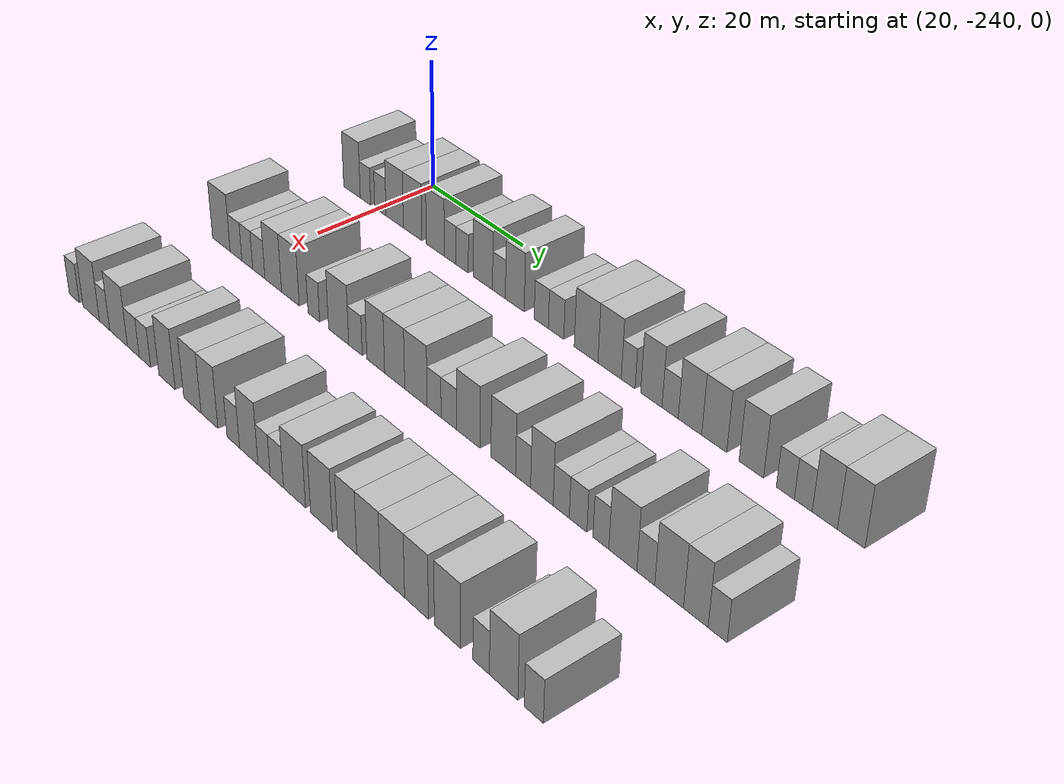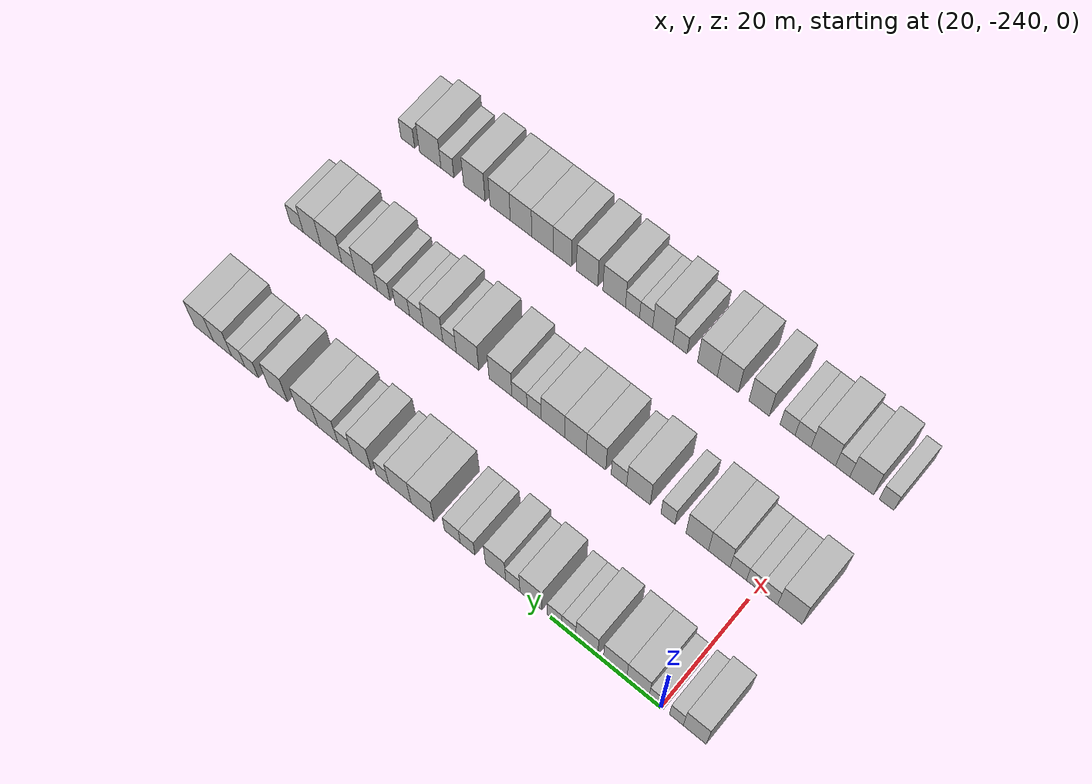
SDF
<sdf version="1.6">
 <world name="default">
  <model name="building_1">
   <static>1</static>
   <pose>25.0000 -245.9847 0 0.000000 0.000000 0.000000</pose>
   <link name="link">
    <pose>0 0 4.50 0 0 0</pose>
    <collision name="collision"><geometry><box><size>10.0000 4.0305 9.0000</size></box></geometry></collision>
    <visual name="visual">
     <cast_shadows>0</cast_shadows>
     <geometry><box><size>10.0000 4.0305 9.0000</size></box></geometry>
     <material>
      <script>
       <uri>model://HANNAS_wall/materials/scripts</uri>
       <uri>model://HANNAS_wall/materials/textures</uri>
       <name>vrc/HANNAS_wall</name>
      </script>
     </material>
    </visual>
   </link>
  </model>
  <model name="building_2">
   <static>1</static>
   <pose>25.0000 -242.7346 0 0.000000 0.000000 0.000000</pose>
   <link name="link">
    <pose>0 0 3.00 0 0 0</pose>
    <collision name="collision"><geometry><box><size>10.0000 2.4697 6.0000</size></box></geometry></collision>
    <visual name="visual">
     <cast_shadows>0</cast_shadows>
     <geometry><box><size>10.0000 2.4697 6.0000</size></box></geometry>
     <material>
      <script>
       <uri>model://HANNAS_wall/materials/scripts</uri>
       <uri>model://HANNAS_wall/materials/textures</uri>
       <name>vrc/HANNAS_wall</name>
      </script>
     </material>
    </visual>
   </link>
  </model>
  <model name="building_3">
   <static>1</static>
   <pose>25.0000 -239.1668 0 0.000000 0.000000 0.000000</pose>
   <link name="link">
    <pose>0 0 3.00 0 0 0</pose>
    <collision name="collision"><geometry><box><size>10.0000 2.6659 6.0000</size></box></geometry></collision>
    <visual name="visual">
     <cast_shadows>0</cast_shadows>
     <geometry><box><size>10.0000 2.6659 6.0000</size></box></geometry>
     <material>
      <script>
       <uri>model://HANNAS_wall/materials/scripts</uri>
       <uri>model://HANNAS_wall/materials/textures</uri>
       <name>vrc/HANNAS_wall</name>
      </script>
     </material>
    </visual>
   </link>
  </model>
  <model name="building_4">
   <static>1</static>
   <pose>25.0000 -235.8251 0 0.000000 0.000000 0.000000</pose>
   <link name="link">
    <pose>0 0 4.50 0 0 0</pose>
    <collision name="collision"><geometry><box><size>10.0000 4.0175 9.0000</size></box></geometry></collision>
    <visual name="visual">
     <cast_shadows>0</cast_shadows>
     <geometry><box><size>10.0000 4.0175 9.0000</size></box></geometry>
     <material>
      <script>
       <uri>model://HANNAS_wall/materials/scripts</uri>
       <uri>model://HANNAS_wall/materials/textures</uri>
       <name>vrc/HANNAS_wall</name>
      </script>
     </material>
    </visual>
   </link>
  </model>
  <model name="building_5">
   <static>1</static>
   <pose>25.0000 -231.7156 0 0.000000 0.000000 0.000000</pose>
   <link name="link">
    <pose>0 0 4.50 0 0 0</pose>
    <collision name="collision"><geometry><box><size>10.0000 4.2014 9.0000</size></box></geometry></collision>
    <visual name="visual">
     <cast_shadows>0</cast_shadows>
     <geometry><box><size>10.0000 4.2014 9.0000</size></box></geometry>
     <material>
      <script>
       <uri>model://HANNAS_wall/materials/scripts</uri>
       <uri>model://HANNAS_wall/materials/textures</uri>
       <name>vrc/HANNAS_wall</name>
      </script>
     </material>
    </visual>
   </link>
  </model>
  <model name="building_6">
   <static>1</static>
   <pose>25.0000 -226.6154 0 0.000000 0.000000 0.000000</pose>
   <link name="link">
    <pose>0 0 4.50 0 0 0</pose>
    <collision name="collision"><geometry><box><size>10.0000 3.9990 9.0000</size></box></geometry></collision>
    <visual name="visual">
     <cast_shadows>0</cast_shadows>
     <geometry><box><size>10.0000 3.9990 9.0000</size></box></geometry>
     <material>
      <script>
       <uri>model://HANNAS_wall/materials/scripts</uri>
       <uri>model://HANNAS_wall/materials/textures</uri>
       <name>vrc/HANNAS_wall</name>
      </script>
     </material>
    </visual>
   </link>
  </model>
  <model name="building_7">
   <static>1</static>
   <pose>25.0000 -223.3513 0 0.000000 0.000000 0.000000</pose>
   <link name="link">
    <pose>0 0 3.00 0 0 0</pose>
    <collision name="collision"><geometry><box><size>10.0000 2.5292 6.0000</size></box></geometry></collision>
    <visual name="visual">
     <cast_shadows>0</cast_shadows>
     <geometry><box><size>10.0000 2.5292 6.0000</size></box></geometry>
     <material>
      <script>
       <uri>model://HANNAS_wall/materials/scripts</uri>
       <uri>model://HANNAS_wall/materials/textures</uri>
       <name>vrc/HANNAS_wall</name>
      </script>
     </material>
    </visual>
   </link>
  </model>
  <model name="building_8">
   <static>1</static>
   <pose>25.0000 -220.7528 0 0.000000 0.000000 0.000000</pose>
   <link name="link">
    <pose>0 0 3.00 0 0 0</pose>
    <collision name="collision"><geometry><box><size>10.0000 2.6679 6.0000</size></box></geometry></collision>
    <visual name="visual">
     <cast_shadows>0</cast_shadows>
     <geometry><box><size>10.0000 2.6679 6.0000</size></box></geometry>
     <material>
      <script>
       <uri>model://HANNAS_wall/materials/scripts</uri>
       <uri>model://HANNAS_wall/materials/textures</uri>
       <name>vrc/HANNAS_wall</name>
      </script>
     </material>
    </visual>
   </link>
  </model>
  <model name="building_9">
   <static>1</static>
   <pose>25.0000 -216.3720 0 0.000000 0.000000 0.000000</pose>
   <link name="link">
    <pose>0 0 4.50 0 0 0</pose>
    <collision name="collision"><geometry><box><size>10.0000 4.0935 9.0000</size></box></geometry></collision>
    <visual name="visual">
     <cast_shadows>0</cast_shadows>
     <geometry><box><size>10.0000 4.0935 9.0000</size></box></geometry>
     <material>
      <script>
       <uri>model://HANNAS_wall/materials/scripts</uri>
       <uri>model://HANNAS_wall/materials/textures</uri>
       <name>vrc/HANNAS_wall</name>
      </script>
     </material>
    </visual>
   </link>
  </model>
  <model name="building_10">
   <static>1</static>
   <pose>25.0000 -212.9944 0 0.000000 0.000000 0.000000</pose>
   <link name="link">
    <pose>0 0 3.00 0 0 0</pose>
    <collision name="collision"><geometry><box><size>10.0000 2.6618 6.0000</size></box></geometry></collision>
    <visual name="visual">
     <cast_shadows>0</cast_shadows>
     <geometry><box><size>10.0000 2.6618 6.0000</size></box></geometry>
     <material>
      <script>
       <uri>model://HANNAS_wall/materials/scripts</uri>
       <uri>model://HANNAS_wall/materials/textures</uri>
       <name>vrc/HANNAS_wall</name>
      </script>
     </material>
    </visual>
   </link>
  </model>
  <model name="building_11">
   <static>1</static>
   <pose>25.0000 -209.7556 0 0.000000 0.000000 0.000000</pose>
   <link name="link">
    <pose>0 0 4.50 0 0 0</pose>
    <collision name="collision"><geometry><box><size>10.0000 3.8159 9.0000</size></box></geometry></collision>
    <visual name="visual">
     <cast_shadows>0</cast_shadows>
     <geometry><box><size>10.0000 3.8159 9.0000</size></box></geometry>
     <material>
      <script>
       <uri>model://HANNAS_wall/materials/scripts</uri>
       <uri>model://HANNAS_wall/materials/textures</uri>
       <name>vrc/HANNAS_wall</name>
      </script>
     </material>
    </visual>
   </link>
  </model>
  <model name="building_12">
   <static>1</static>
   <pose>25.0000 -204.4514 0 0.000000 0.000000 0.000000</pose>
   <link name="link">
    <pose>0 0 3.00 0 0 0</pose>
    <collision name="collision"><geometry><box><size>10.0000 2.7926 6.0000</size></box></geometry></collision>
    <visual name="visual">
     <cast_shadows>0</cast_shadows>
     <geometry><box><size>10.0000 2.7926 6.0000</size></box></geometry>
     <material>
      <script>
       <uri>model://HANNAS_wall/materials/scripts</uri>
       <uri>model://HANNAS_wall/materials/textures</uri>
       <name>vrc/HANNAS_wall</name>
      </script>
     </material>
    </visual>
   </link>
  </model>
  <model name="building_13">
   <static>1</static>
   <pose>25.0000 -201.5556 0 0.000000 0.000000 0.000000</pose>
   <link name="link">
    <pose>0 0 3.00 0 0 0</pose>
    <collision name="collision"><geometry><box><size>10.0000 2.9989 6.0000</size></box></geometry></collision>
    <visual name="visual">
     <cast_shadows>0</cast_shadows>
     <geometry><box><size>10.0000 2.9989 6.0000</size></box></geometry>
     <material>
      <script>
       <uri>model://HANNAS_wall/materials/scripts</uri>
       <uri>model://HANNAS_wall/materials/textures</uri>
       <name>vrc/HANNAS_wall</name>
      </script>
     </material>
    </visual>
   </link>
  </model>
  <model name="building_14">
   <static>1</static>
   <pose>25.0000 -195.8231 0 0.000000 0.000000 0.000000</pose>
   <link name="link">
    <pose>0 0 4.50 0 0 0</pose>
    <collision name="collision"><geometry><box><size>10.0000 4.4661 9.0000</size></box></geometry></collision>
    <visual name="visual">
     <cast_shadows>0</cast_shadows>
     <geometry><box><size>10.0000 4.4661 9.0000</size></box></geometry>
     <material>
      <script>
       <uri>model://HANNAS_wall/materials/scripts</uri>
       <uri>model://HANNAS_wall/materials/textures</uri>
       <name>vrc/HANNAS_wall</name>
      </script>
     </material>
    </visual>
   </link>
  </model>
  <model name="building_15">
   <static>1</static>
   <pose>25.0000 -191.4522 0 0.000000 0.000000 0.000000</pose>
   <link name="link">
    <pose>0 0 4.50 0 0 0</pose>
    <collision name="collision"><geometry><box><size>10.0000 4.2756 9.0000</size></box></geometry></collision>
    <visual name="visual">
     <cast_shadows>0</cast_shadows>
     <geometry><box><size>10.0000 4.2756 9.0000</size></box></geometry>
     <material>
      <script>
       <uri>model://HANNAS_wall/materials/scripts</uri>
       <uri>model://HANNAS_wall/materials/textures</uri>
       <name>vrc/HANNAS_wall</name>
      </script>
     </material>
    </visual>
   </link>
  </model>
  <model name="building_16">
   <static>1</static>
   <pose>25.0000 -188.0689 0 0.000000 0.000000 0.000000</pose>
   <link name="link">
    <pose>0 0 3.00 0 0 0</pose>
    <collision name="collision"><geometry><box><size>10.0000 2.4910 6.0000</size></box></geometry></collision>
    <visual name="visual">
     <cast_shadows>0</cast_shadows>
     <geometry><box><size>10.0000 2.4910 6.0000</size></box></geometry>
     <material>
      <script>
       <uri>model://HANNAS_wall/materials/scripts</uri>
       <uri>model://HANNAS_wall/materials/textures</uri>
       <name>vrc/HANNAS_wall</name>
      </script>
     </material>
    </visual>
   </link>
  </model>
  <model name="building_17">
   <static>1</static>
   <pose>25.0000 -183.9358 0 0.000000 0.000000 0.000000</pose>
   <link name="link">
    <pose>0 0 4.50 0 0 0</pose>
    <collision name="collision"><geometry><box><size>10.0000 3.7752 9.0000</size></box></geometry></collision>
    <visual name="visual">
     <cast_shadows>0</cast_shadows>
     <geometry><box><size>10.0000 3.7752 9.0000</size></box></geometry>
     <material>
      <script>
       <uri>model://HANNAS_wall/materials/scripts</uri>
       <uri>model://HANNAS_wall/materials/textures</uri>
       <name>vrc/HANNAS_wall</name>
      </script>
     </material>
    </visual>
   </link>
  </model>
  <model name="building_18">
   <static>1</static>
   <pose>25.0000 -180.6475 0 0.000000 0.000000 0.000000</pose>
   <link name="link">
    <pose>0 0 3.00 0 0 0</pose>
    <collision name="collision"><geometry><box><size>10.0000 2.8013 6.0000</size></box></geometry></collision>
    <visual name="visual">
     <cast_shadows>0</cast_shadows>
     <geometry><box><size>10.0000 2.8013 6.0000</size></box></geometry>
     <material>
      <script>
       <uri>model://HANNAS_wall/materials/scripts</uri>
       <uri>model://HANNAS_wall/materials/textures</uri>
       <name>vrc/HANNAS_wall</name>
      </script>
     </material>
    </visual>
   </link>
  </model>
  <model name="building_19">
   <static>1</static>
   <pose>25.0000 -177.2562 0 0.000000 0.000000 0.000000</pose>
   <link name="link">
    <pose>0 0 4.50 0 0 0</pose>
    <collision name="collision"><geometry><box><size>10.0000 3.9814 9.0000</size></box></geometry></collision>
    <visual name="visual">
     <cast_shadows>0</cast_shadows>
     <geometry><box><size>10.0000 3.9814 9.0000</size></box></geometry>
     <material>
      <script>
       <uri>model://HANNAS_wall/materials/scripts</uri>
       <uri>model://HANNAS_wall/materials/textures</uri>
       <name>vrc/HANNAS_wall</name>
      </script>
     </material>
    </visual>
   </link>
  </model>
  <model name="building_20">
   <static>1</static>
   <pose>25.0000 -173.1930 0 0.000000 0.000000 0.000000</pose>
   <link name="link">
    <pose>0 0 4.50 0 0 0</pose>
    <collision name="collision"><geometry><box><size>10.0000 4.1450 9.0000</size></box></geometry></collision>
    <visual name="visual">
     <cast_shadows>0</cast_shadows>
     <geometry><box><size>10.0000 4.1450 9.0000</size></box></geometry>
     <material>
      <script>
       <uri>model://HANNAS_wall/materials/scripts</uri>
       <uri>model://HANNAS_wall/materials/textures</uri>
       <name>vrc/HANNAS_wall</name>
      </script>
     </material>
    </visual>
   </link>
  </model>
  <model name="building_21">
   <static>1</static>
   <pose>25.0000 -167.1621 0 0.000000 0.000000 0.000000</pose>
   <link name="link">
    <pose>0 0 4.50 0 0 0</pose>
    <collision name="collision"><geometry><box><size>10.0000 3.9168 9.0000</size></box></geometry></collision>
    <visual name="visual">
     <cast_shadows>0</cast_shadows>
     <geometry><box><size>10.0000 3.9168 9.0000</size></box></geometry>
     <material>
      <script>
       <uri>model://HANNAS_wall/materials/scripts</uri>
       <uri>model://HANNAS_wall/materials/textures</uri>
       <name>vrc/HANNAS_wall</name>
      </script>
     </material>
    </visual>
   </link>
  </model>
  <model name="building_22">
   <static>1</static>
   <pose>25.0000 -161.8120 0 0.000000 0.000000 0.000000</pose>
   <link name="link">
    <pose>0 0 3.00 0 0 0</pose>
    <collision name="collision"><geometry><box><size>10.0000 2.7835 6.0000</size></box></geometry></collision>
    <visual name="visual">
     <cast_shadows>0</cast_shadows>
     <geometry><box><size>10.0000 2.7835 6.0000</size></box></geometry>
     <material>
      <script>
       <uri>model://HANNAS_wall/materials/scripts</uri>
       <uri>model://HANNAS_wall/materials/textures</uri>
       <name>vrc/HANNAS_wall</name>
      </script>
     </material>
    </visual>
   </link>
  </model>
  <model name="building_23">
   <static>1</static>
   <pose>25.0000 -159.0636 0 0.000000 0.000000 0.000000</pose>
   <link name="link">
    <pose>0 0 3.00 0 0 0</pose>
    <collision name="collision"><geometry><box><size>10.0000 2.7134 6.0000</size></box></geometry></collision>
    <visual name="visual">
     <cast_shadows>0</cast_shadows>
     <geometry><box><size>10.0000 2.7134 6.0000</size></box></geometry>
     <material>
      <script>
       <uri>model://HANNAS_wall/materials/scripts</uri>
       <uri>model://HANNAS_wall/materials/textures</uri>
       <name>vrc/HANNAS_wall</name>
      </script>
     </material>
    </visual>
   </link>
  </model>
  <model name="building_24">
   <static>1</static>
   <pose>25.0000 -155.8258 0 0.000000 0.000000 0.000000</pose>
   <link name="link">
    <pose>0 0 4.50 0 0 0</pose>
    <collision name="collision"><geometry><box><size>10.0000 3.7621 9.0000</size></box></geometry></collision>
    <visual name="visual">
     <cast_shadows>0</cast_shadows>
     <geometry><box><size>10.0000 3.7621 9.0000</size></box></geometry>
     <material>
      <script>
       <uri>model://HANNAS_wall/materials/scripts</uri>
       <uri>model://HANNAS_wall/materials/textures</uri>
       <name>vrc/HANNAS_wall</name>
      </script>
     </material>
    </visual>
   </link>
  </model>
  <model name="building_25">
   <static>1</static>
   <pose>25.0000 -151.9421 0 0.000000 0.000000 0.000000</pose>
   <link name="link">
    <pose>0 0 4.50 0 0 0</pose>
    <collision name="collision"><geometry><box><size>10.0000 4.0052 9.0000</size></box></geometry></collision>
    <visual name="visual">
     <cast_shadows>0</cast_shadows>
     <geometry><box><size>10.0000 4.0052 9.0000</size></box></geometry>
     <material>
      <script>
       <uri>model://HANNAS_wall/materials/scripts</uri>
       <uri>model://HANNAS_wall/materials/textures</uri>
       <name>vrc/HANNAS_wall</name>
      </script>
     </material>
    </visual>
   </link>
  </model>
  <model name="building_131">
   <static>1</static>
   <pose>47.0000 -245.7831 0 0.000000 0.000000 0.000000</pose>
   <link name="link">
    <pose>0 0 4.50 0 0 0</pose>
    <collision name="collision"><geometry><box><size>10.0000 4.4338 9.0000</size></box></geometry></collision>
    <visual name="visual">
     <cast_shadows>0</cast_shadows>
     <geometry><box><size>10.0000 4.4338 9.0000</size></box></geometry>
     <material>
      <script>
       <uri>model://HANNAS_wall/materials/scripts</uri>
       <uri>model://HANNAS_wall/materials/textures</uri>
       <name>vrc/HANNAS_wall</name>
      </script>
     </material>
    </visual>
   </link>
  </model>
  <model name="building_132">
   <static>1</static>
   <pose>47.0000 -242.1000 0 0.000000 0.000000 0.000000</pose>
   <link name="link">
    <pose>0 0 3.00 0 0 0</pose>
    <collision name="collision"><geometry><box><size>10.0000 2.9326 6.0000</size></box></geometry></collision>
    <visual name="visual">
     <cast_shadows>0</cast_shadows>
     <geometry><box><size>10.0000 2.9326 6.0000</size></box></geometry>
     <material>
      <script>
       <uri>model://HANNAS_wall/materials/scripts</uri>
       <uri>model://HANNAS_wall/materials/textures</uri>
       <name>vrc/HANNAS_wall</name>
      </script>
     </material>
    </visual>
   </link>
  </model>
  <model name="building_133">
   <static>1</static>
   <pose>47.0000 -239.3167 0 0.000000 0.000000 0.000000</pose>
   <link name="link">
    <pose>0 0 3.00 0 0 0</pose>
    <collision name="collision"><geometry><box><size>10.0000 2.6340 6.0000</size></box></geometry></collision>
    <visual name="visual">
     <cast_shadows>0</cast_shadows>
     <geometry><box><size>10.0000 2.6340 6.0000</size></box></geometry>
     <material>
      <script>
       <uri>model://HANNAS_wall/materials/scripts</uri>
       <uri>model://HANNAS_wall/materials/textures</uri>
       <name>vrc/HANNAS_wall</name>
      </script>
     </material>
    </visual>
   </link>
  </model>
  <model name="building_134">
   <static>1</static>
   <pose>47.0000 -236.5201 0 0.000000 0.000000 0.000000</pose>
   <link name="link">
    <pose>0 0 3.00 0 0 0</pose>
    <collision name="collision"><geometry><box><size>10.0000 2.9591 6.0000</size></box></geometry></collision>
    <visual name="visual">
     <cast_shadows>0</cast_shadows>
     <geometry><box><size>10.0000 2.9591 6.0000</size></box></geometry>
     <material>
      <script>
       <uri>model://HANNAS_wall/materials/scripts</uri>
       <uri>model://HANNAS_wall/materials/textures</uri>
       <name>vrc/HANNAS_wall</name>
      </script>
     </material>
    </visual>
   </link>
  </model>
  <model name="building_135">
   <static>1</static>
   <pose>47.0000 -233.0750 0 0.000000 0.000000 0.000000</pose>
   <link name="link">
    <pose>0 0 4.50 0 0 0</pose>
    <collision name="collision"><geometry><box><size>10.0000 3.9310 9.0000</size></box></geometry></collision>
    <visual name="visual">
     <cast_shadows>0</cast_shadows>
     <geometry><box><size>10.0000 3.9310 9.0000</size></box></geometry>
     <material>
      <script>
       <uri>model://HANNAS_wall/materials/scripts</uri>
       <uri>model://HANNAS_wall/materials/textures</uri>
       <name>vrc/HANNAS_wall</name>
      </script>
     </material>
    </visual>
   </link>
  </model>
  <model name="building_136">
   <static>1</static>
   <pose>47.0000 -229.0514 0 0.000000 0.000000 0.000000</pose>
   <link name="link">
    <pose>0 0 4.50 0 0 0</pose>
    <collision name="collision"><geometry><box><size>10.0000 4.1163 9.0000</size></box></geometry></collision>
    <visual name="visual">
     <cast_shadows>0</cast_shadows>
     <geometry><box><size>10.0000 4.1163 9.0000</size></box></geometry>
     <material>
      <script>
       <uri>model://HANNAS_wall/materials/scripts</uri>
       <uri>model://HANNAS_wall/materials/textures</uri>
       <name>vrc/HANNAS_wall</name>
      </script>
     </material>
    </visual>
   </link>
  </model>
  <model name="building_137">
   <static>1</static>
   <pose>47.0000 -223.6809 0 0.000000 0.000000 0.000000</pose>
   <link name="link">
    <pose>0 0 3.00 0 0 0</pose>
    <collision name="collision"><geometry><box><size>10.0000 2.6247 6.0000</size></box></geometry></collision>
    <visual name="visual">
     <cast_shadows>0</cast_shadows>
     <geometry><box><size>10.0000 2.6247 6.0000</size></box></geometry>
     <material>
      <script>
       <uri>model://HANNAS_wall/materials/scripts</uri>
       <uri>model://HANNAS_wall/materials/textures</uri>
       <name>vrc/HANNAS_wall</name>
      </script>
     </material>
    </visual>
   </link>
  </model>
  <model name="building_138">
   <static>1</static>
   <pose>47.0000 -218.1672 0 0.000000 0.000000 0.000000</pose>
   <link name="link">
    <pose>0 0 4.50 0 0 0</pose>
    <collision name="collision"><geometry><box><size>10.0000 4.4027 9.0000</size></box></geometry></collision>
    <visual name="visual">
     <cast_shadows>0</cast_shadows>
     <geometry><box><size>10.0000 4.4027 9.0000</size></box></geometry>
     <material>
      <script>
       <uri>model://HANNAS_wall/materials/scripts</uri>
       <uri>model://HANNAS_wall/materials/textures</uri>
       <name>vrc/HANNAS_wall</name>
      </script>
     </material>
    </visual>
   </link>
  </model>
  <model name="building_139">
   <static>1</static>
   <pose>47.0000 -214.5176 0 0.000000 0.000000 0.000000</pose>
   <link name="link">
    <pose>0 0 3.00 0 0 0</pose>
    <collision name="collision"><geometry><box><size>10.0000 2.8966 6.0000</size></box></geometry></collision>
    <visual name="visual">
     <cast_shadows>0</cast_shadows>
     <geometry><box><size>10.0000 2.8966 6.0000</size></box></geometry>
     <material>
      <script>
       <uri>model://HANNAS_wall/materials/scripts</uri>
       <uri>model://HANNAS_wall/materials/textures</uri>
       <name>vrc/HANNAS_wall</name>
      </script>
     </material>
    </visual>
   </link>
  </model>
  <model name="building_140">
   <static>1</static>
   <pose>47.0000 -210.2104 0 0.000000 0.000000 0.000000</pose>
   <link name="link">
    <pose>0 0 4.50 0 0 0</pose>
    <collision name="collision"><geometry><box><size>10.0000 3.7176 9.0000</size></box></geometry></collision>
    <visual name="visual">
     <cast_shadows>0</cast_shadows>
     <geometry><box><size>10.0000 3.7176 9.0000</size></box></geometry>
     <material>
      <script>
       <uri>model://HANNAS_wall/materials/scripts</uri>
       <uri>model://HANNAS_wall/materials/textures</uri>
       <name>vrc/HANNAS_wall</name>
      </script>
     </material>
    </visual>
   </link>
  </model>
  <model name="building_141">
   <static>1</static>
   <pose>47.0000 -206.2868 0 0.000000 0.000000 0.000000</pose>
   <link name="link">
    <pose>0 0 4.50 0 0 0</pose>
    <collision name="collision"><geometry><box><size>10.0000 4.1298 9.0000</size></box></geometry></collision>
    <visual name="visual">
     <cast_shadows>0</cast_shadows>
     <geometry><box><size>10.0000 4.1298 9.0000</size></box></geometry>
     <material>
      <script>
       <uri>model://HANNAS_wall/materials/scripts</uri>
       <uri>model://HANNAS_wall/materials/textures</uri>
       <name>vrc/HANNAS_wall</name>
      </script>
     </material>
    </visual>
   </link>
  </model>
  <model name="building_142">
   <static>1</static>
   <pose>47.0000 -201.9830 0 0.000000 0.000000 0.000000</pose>
   <link name="link">
    <pose>0 0 4.50 0 0 0</pose>
    <collision name="collision"><geometry><box><size>10.0000 4.4778 9.0000</size></box></geometry></collision>
    <visual name="visual">
     <cast_shadows>0</cast_shadows>
     <geometry><box><size>10.0000 4.4778 9.0000</size></box></geometry>
     <material>
      <script>
       <uri>model://HANNAS_wall/materials/scripts</uri>
       <uri>model://HANNAS_wall/materials/textures</uri>
       <name>vrc/HANNAS_wall</name>
      </script>
     </material>
    </visual>
   </link>
  </model>
  <model name="building_143">
   <static>1</static>
   <pose>47.0000 -198.3755 0 0.000000 0.000000 0.000000</pose>
   <link name="link">
    <pose>0 0 3.00 0 0 0</pose>
    <collision name="collision"><geometry><box><size>10.0000 2.7372 6.0000</size></box></geometry></collision>
    <visual name="visual">
     <cast_shadows>0</cast_shadows>
     <geometry><box><size>10.0000 2.7372 6.0000</size></box></geometry>
     <material>
      <script>
       <uri>model://HANNAS_wall/materials/scripts</uri>
       <uri>model://HANNAS_wall/materials/textures</uri>
       <name>vrc/HANNAS_wall</name>
      </script>
     </material>
    </visual>
   </link>
  </model>
  <model name="building_144">
   <static>1</static>
   <pose>47.0000 -195.5358 0 0.000000 0.000000 0.000000</pose>
   <link name="link">
    <pose>0 0 3.00 0 0 0</pose>
    <collision name="collision"><geometry><box><size>10.0000 2.9421 6.0000</size></box></geometry></collision>
    <visual name="visual">
     <cast_shadows>0</cast_shadows>
     <geometry><box><size>10.0000 2.9421 6.0000</size></box></geometry>
     <material>
      <script>
       <uri>model://HANNAS_wall/materials/scripts</uri>
       <uri>model://HANNAS_wall/materials/textures</uri>
       <name>vrc/HANNAS_wall</name>
      </script>
     </material>
    </visual>
   </link>
  </model>
  <model name="building_145">
   <static>1</static>
   <pose>47.0000 -191.8267 0 0.000000 0.000000 0.000000</pose>
   <link name="link">
    <pose>0 0 4.50 0 0 0</pose>
    <collision name="collision"><geometry><box><size>10.0000 4.4762 9.0000</size></box></geometry></collision>
    <visual name="visual">
     <cast_shadows>0</cast_shadows>
     <geometry><box><size>10.0000 4.4762 9.0000</size></box></geometry>
     <material>
      <script>
       <uri>model://HANNAS_wall/materials/scripts</uri>
       <uri>model://HANNAS_wall/materials/textures</uri>
       <name>vrc/HANNAS_wall</name>
      </script>
     </material>
    </visual>
   </link>
  </model>
  <model name="building_146">
   <static>1</static>
   <pose>47.0000 -185.3511 0 0.000000 0.000000 0.000000</pose>
   <link name="link">
    <pose>0 0 4.50 0 0 0</pose>
    <collision name="collision"><geometry><box><size>10.0000 4.4749 9.0000</size></box></geometry></collision>
    <visual name="visual">
     <cast_shadows>0</cast_shadows>
     <geometry><box><size>10.0000 4.4749 9.0000</size></box></geometry>
     <material>
      <script>
       <uri>model://HANNAS_wall/materials/scripts</uri>
       <uri>model://HANNAS_wall/materials/textures</uri>
       <name>vrc/HANNAS_wall</name>
      </script>
     </material>
    </visual>
   </link>
  </model>
  <model name="building_147">
   <static>1</static>
   <pose>47.0000 -181.7834 0 0.000000 0.000000 0.000000</pose>
   <link name="link">
    <pose>0 0 3.00 0 0 0</pose>
    <collision name="collision"><geometry><box><size>10.0000 2.6606 6.0000</size></box></geometry></collision>
    <visual name="visual">
     <cast_shadows>0</cast_shadows>
     <geometry><box><size>10.0000 2.6606 6.0000</size></box></geometry>
     <material>
      <script>
       <uri>model://HANNAS_wall/materials/scripts</uri>
       <uri>model://HANNAS_wall/materials/textures</uri>
       <name>vrc/HANNAS_wall</name>
      </script>
     </material>
    </visual>
   </link>
  </model>
  <model name="building_148">
   <static>1</static>
   <pose>47.0000 -178.4844 0 0.000000 0.000000 0.000000</pose>
   <link name="link">
    <pose>0 0 4.50 0 0 0</pose>
    <collision name="collision"><geometry><box><size>10.0000 3.9373 9.0000</size></box></geometry></collision>
    <visual name="visual">
     <cast_shadows>0</cast_shadows>
     <geometry><box><size>10.0000 3.9373 9.0000</size></box></geometry>
     <material>
      <script>
       <uri>model://HANNAS_wall/materials/scripts</uri>
       <uri>model://HANNAS_wall/materials/textures</uri>
       <name>vrc/HANNAS_wall</name>
      </script>
     </material>
    </visual>
   </link>
  </model>
  <model name="building_149">
   <static>1</static>
   <pose>47.0000 -175.1415 0 0.000000 0.000000 0.000000</pose>
   <link name="link">
    <pose>0 0 3.00 0 0 0</pose>
    <collision name="collision"><geometry><box><size>10.0000 2.7487 6.0000</size></box></geometry></collision>
    <visual name="visual">
     <cast_shadows>0</cast_shadows>
     <geometry><box><size>10.0000 2.7487 6.0000</size></box></geometry>
     <material>
      <script>
       <uri>model://HANNAS_wall/materials/scripts</uri>
       <uri>model://HANNAS_wall/materials/textures</uri>
       <name>vrc/HANNAS_wall</name>
      </script>
     </material>
    </visual>
   </link>
  </model>
  <model name="building_150">
   <static>1</static>
   <pose>47.0000 -172.2871 0 0.000000 0.000000 0.000000</pose>
   <link name="link">
    <pose>0 0 3.00 0 0 0</pose>
    <collision name="collision"><geometry><box><size>10.0000 2.9601 6.0000</size></box></geometry></collision>
    <visual name="visual">
     <cast_shadows>0</cast_shadows>
     <geometry><box><size>10.0000 2.9601 6.0000</size></box></geometry>
     <material>
      <script>
       <uri>model://HANNAS_wall/materials/scripts</uri>
       <uri>model://HANNAS_wall/materials/textures</uri>
       <name>vrc/HANNAS_wall</name>
      </script>
     </material>
    </visual>
   </link>
  </model>
  <model name="building_151">
   <static>1</static>
   <pose>47.0000 -168.5086 0 0.000000 0.000000 0.000000</pose>
   <link name="link">
    <pose>0 0 3.00 0 0 0</pose>
    <collision name="collision"><geometry><box><size>10.0000 2.5968 6.0000</size></box></geometry></collision>
    <visual name="visual">
     <cast_shadows>0</cast_shadows>
     <geometry><box><size>10.0000 2.5968 6.0000</size></box></geometry>
     <material>
      <script>
       <uri>model://HANNAS_wall/materials/scripts</uri>
       <uri>model://HANNAS_wall/materials/textures</uri>
       <name>vrc/HANNAS_wall</name>
      </script>
     </material>
    </visual>
   </link>
  </model>
  <model name="building_152">
   <static>1</static>
   <pose>47.0000 -164.9627 0 0.000000 0.000000 0.000000</pose>
   <link name="link">
    <pose>0 0 4.50 0 0 0</pose>
    <collision name="collision"><geometry><box><size>10.0000 4.4950 9.0000</size></box></geometry></collision>
    <visual name="visual">
     <cast_shadows>0</cast_shadows>
     <geometry><box><size>10.0000 4.4950 9.0000</size></box></geometry>
     <material>
      <script>
       <uri>model://HANNAS_wall/materials/scripts</uri>
       <uri>model://HANNAS_wall/materials/textures</uri>
       <name>vrc/HANNAS_wall</name>
      </script>
     </material>
    </visual>
   </link>
  </model>
  <model name="building_153">
   <static>1</static>
   <pose>47.0000 -161.3163 0 0.000000 0.000000 0.000000</pose>
   <link name="link">
    <pose>0 0 3.00 0 0 0</pose>
    <collision name="collision"><geometry><box><size>10.0000 2.7978 6.0000</size></box></geometry></collision>
    <visual name="visual">
     <cast_shadows>0</cast_shadows>
     <geometry><box><size>10.0000 2.7978 6.0000</size></box></geometry>
     <material>
      <script>
       <uri>model://HANNAS_wall/materials/scripts</uri>
       <uri>model://HANNAS_wall/materials/textures</uri>
       <name>vrc/HANNAS_wall</name>
      </script>
     </material>
    </visual>
   </link>
  </model>
  <model name="building_154">
   <static>1</static>
   <pose>47.0000 -157.7211 0 0.000000 0.000000 0.000000</pose>
   <link name="link">
    <pose>0 0 4.50 0 0 0</pose>
    <collision name="collision"><geometry><box><size>10.0000 4.3926 9.0000</size></box></geometry></collision>
    <visual name="visual">
     <cast_shadows>0</cast_shadows>
     <geometry><box><size>10.0000 4.3926 9.0000</size></box></geometry>
     <material>
      <script>
       <uri>model://HANNAS_wall/materials/scripts</uri>
       <uri>model://HANNAS_wall/materials/textures</uri>
       <name>vrc/HANNAS_wall</name>
      </script>
     </material>
    </visual>
   </link>
  </model>
  <model name="building_155">
   <static>1</static>
   <pose>47.0000 -153.6872 0 0.000000 0.000000 0.000000</pose>
   <link name="link">
    <pose>0 0 4.50 0 0 0</pose>
    <collision name="collision"><geometry><box><size>10.0000 3.6751 9.0000</size></box></geometry></collision>
    <visual name="visual">
     <cast_shadows>0</cast_shadows>
     <geometry><box><size>10.0000 3.6751 9.0000</size></box></geometry>
     <material>
      <script>
       <uri>model://HANNAS_wall/materials/scripts</uri>
       <uri>model://HANNAS_wall/materials/textures</uri>
       <name>vrc/HANNAS_wall</name>
      </script>
     </material>
    </visual>
   </link>
  </model>
  <model name="building_156">
   <static>1</static>
   <pose>47.0000 -150.4575 0 0.000000 0.000000 0.000000</pose>
   <link name="link">
    <pose>0 0 3.00 0 0 0</pose>
    <collision name="collision"><geometry><box><size>10.0000 2.7844 6.0000</size></box></geometry></collision>
    <visual name="visual">
     <cast_shadows>0</cast_shadows>
     <geometry><box><size>10.0000 2.7844 6.0000</size></box></geometry>
     <material>
      <script>
       <uri>model://HANNAS_wall/materials/scripts</uri>
       <uri>model://HANNAS_wall/materials/textures</uri>
       <name>vrc/HANNAS_wall</name>
      </script>
     </material>
    </visual>
   </link>
  </model>
  <model name="building_249">
   <static>1</static>
   <pose>69.0000 -246.6694 0 0.000000 0.000000 0.000000</pose>
   <link name="link">
    <pose>0 0 3.00 0 0 0</pose>
    <collision name="collision"><geometry><box><size>10.0000 2.6613 6.0000</size></box></geometry></collision>
    <visual name="visual">
     <cast_shadows>0</cast_shadows>
     <geometry><box><size>10.0000 2.6613 6.0000</size></box></geometry>
     <material>
      <script>
       <uri>model://HANNAS_wall/materials/scripts</uri>
       <uri>model://HANNAS_wall/materials/textures</uri>
       <name>vrc/HANNAS_wall</name>
      </script>
     </material>
    </visual>
   </link>
  </model>
  <model name="building_250">
   <static>1</static>
   <pose>69.0000 -242.1951 0 0.000000 0.000000 0.000000</pose>
   <link name="link">
    <pose>0 0 4.50 0 0 0</pose>
    <collision name="collision"><geometry><box><size>10.0000 4.2873 9.0000</size></box></geometry></collision>
    <visual name="visual">
     <cast_shadows>0</cast_shadows>
     <geometry><box><size>10.0000 4.2873 9.0000</size></box></geometry>
     <material>
      <script>
       <uri>model://HANNAS_wall/materials/scripts</uri>
       <uri>model://HANNAS_wall/materials/textures</uri>
       <name>vrc/HANNAS_wall</name>
      </script>
     </material>
    </visual>
   </link>
  </model>
  <model name="building_251">
   <static>1</static>
   <pose>69.0000 -238.7373 0 0.000000 0.000000 0.000000</pose>
   <link name="link">
    <pose>0 0 3.00 0 0 0</pose>
    <collision name="collision"><geometry><box><size>10.0000 2.6284 6.0000</size></box></geometry></collision>
    <visual name="visual">
     <cast_shadows>0</cast_shadows>
     <geometry><box><size>10.0000 2.6284 6.0000</size></box></geometry>
     <material>
      <script>
       <uri>model://HANNAS_wall/materials/scripts</uri>
       <uri>model://HANNAS_wall/materials/textures</uri>
       <name>vrc/HANNAS_wall</name>
      </script>
     </material>
    </visual>
   </link>
  </model>
  <model name="building_252">
   <static>1</static>
   <pose>69.0000 -235.1842 0 0.000000 0.000000 0.000000</pose>
   <link name="link">
    <pose>0 0 4.50 0 0 0</pose>
    <collision name="collision"><geometry><box><size>10.0000 4.4778 9.0000</size></box></geometry></collision>
    <visual name="visual">
     <cast_shadows>0</cast_shadows>
     <geometry><box><size>10.0000 4.4778 9.0000</size></box></geometry>
     <material>
      <script>
       <uri>model://HANNAS_wall/materials/scripts</uri>
       <uri>model://HANNAS_wall/materials/textures</uri>
       <name>vrc/HANNAS_wall</name>
      </script>
     </material>
    </visual>
   </link>
  </model>
  <model name="building_253">
   <static>1</static>
   <pose>69.0000 -231.4836 0 0.000000 0.000000 0.000000</pose>
   <link name="link">
    <pose>0 0 3.00 0 0 0</pose>
    <collision name="collision"><geometry><box><size>10.0000 2.9235 6.0000</size></box></geometry></collision>
    <visual name="visual">
     <cast_shadows>0</cast_shadows>
     <geometry><box><size>10.0000 2.9235 6.0000</size></box></geometry>
     <material>
      <script>
       <uri>model://HANNAS_wall/materials/scripts</uri>
       <uri>model://HANNAS_wall/materials/textures</uri>
       <name>vrc/HANNAS_wall</name>
      </script>
     </material>
    </visual>
   </link>
  </model>
  <model name="building_254">
   <static>1</static>
   <pose>69.0000 -228.6547 0 0.000000 0.000000 0.000000</pose>
   <link name="link">
    <pose>0 0 3.00 0 0 0</pose>
    <collision name="collision"><geometry><box><size>10.0000 2.7342 6.0000</size></box></geometry></collision>
    <visual name="visual">
     <cast_shadows>0</cast_shadows>
     <geometry><box><size>10.0000 2.7342 6.0000</size></box></geometry>
     <material>
      <script>
       <uri>model://HANNAS_wall/materials/scripts</uri>
       <uri>model://HANNAS_wall/materials/textures</uri>
       <name>vrc/HANNAS_wall</name>
      </script>
     </material>
    </visual>
   </link>
  </model>
  <model name="building_255">
   <static>1</static>
   <pose>69.0000 -223.3782 0 0.000000 0.000000 0.000000</pose>
   <link name="link">
    <pose>0 0 4.50 0 0 0</pose>
    <collision name="collision"><geometry><box><size>10.0000 3.8187 9.0000</size></box></geometry></collision>
    <visual name="visual">
     <cast_shadows>0</cast_shadows>
     <geometry><box><size>10.0000 3.8187 9.0000</size></box></geometry>
     <material>
      <script>
       <uri>model://HANNAS_wall/materials/scripts</uri>
       <uri>model://HANNAS_wall/materials/textures</uri>
       <name>vrc/HANNAS_wall</name>
      </script>
     </material>
    </visual>
   </link>
  </model>
  <model name="building_256">
   <static>1</static>
   <pose>69.0000 -217.4878 0 0.000000 0.000000 0.000000</pose>
   <link name="link">
    <pose>0 0 4.50 0 0 0</pose>
    <collision name="collision"><geometry><box><size>10.0000 3.9622 9.0000</size></box></geometry></collision>
    <visual name="visual">
     <cast_shadows>0</cast_shadows>
     <geometry><box><size>10.0000 3.9622 9.0000</size></box></geometry>
     <material>
      <script>
       <uri>model://HANNAS_wall/materials/scripts</uri>
       <uri>model://HANNAS_wall/materials/textures</uri>
       <name>vrc/HANNAS_wall</name>
      </script>
     </material>
    </visual>
   </link>
  </model>
  <model name="building_257">
   <static>1</static>
   <pose>69.0000 -213.6352 0 0.000000 0.000000 0.000000</pose>
   <link name="link">
    <pose>0 0 4.50 0 0 0</pose>
    <collision name="collision"><geometry><box><size>10.0000 3.7429 9.0000</size></box></geometry></collision>
    <visual name="visual">
     <cast_shadows>0</cast_shadows>
     <geometry><box><size>10.0000 3.7429 9.0000</size></box></geometry>
     <material>
      <script>
       <uri>model://HANNAS_wall/materials/scripts</uri>
       <uri>model://HANNAS_wall/materials/textures</uri>
       <name>vrc/HANNAS_wall</name>
      </script>
     </material>
    </visual>
   </link>
  </model>
  <model name="building_258">
   <static>1</static>
   <pose>69.0000 -208.4045 0 0.000000 0.000000 0.000000</pose>
   <link name="link">
    <pose>0 0 3.00 0 0 0</pose>
    <collision name="collision"><geometry><box><size>10.0000 2.7186 6.0000</size></box></geometry></collision>
    <visual name="visual">
     <cast_shadows>0</cast_shadows>
     <geometry><box><size>10.0000 2.7186 6.0000</size></box></geometry>
     <material>
      <script>
       <uri>model://HANNAS_wall/materials/scripts</uri>
       <uri>model://HANNAS_wall/materials/textures</uri>
       <name>vrc/HANNAS_wall</name>
      </script>
     </material>
    </visual>
   </link>
  </model>
  <model name="building_259">
   <static>1</static>
   <pose>69.0000 -205.0917 0 0.000000 0.000000 0.000000</pose>
   <link name="link">
    <pose>0 0 4.50 0 0 0</pose>
    <collision name="collision"><geometry><box><size>10.0000 3.9069 9.0000</size></box></geometry></collision>
    <visual name="visual">
     <cast_shadows>0</cast_shadows>
     <geometry><box><size>10.0000 3.9069 9.0000</size></box></geometry>
     <material>
      <script>
       <uri>model://HANNAS_wall/materials/scripts</uri>
       <uri>model://HANNAS_wall/materials/textures</uri>
       <name>vrc/HANNAS_wall</name>
      </script>
     </material>
    </visual>
   </link>
  </model>
  <model name="building_260">
   <static>1</static>
   <pose>69.0000 -201.8675 0 0.000000 0.000000 0.000000</pose>
   <link name="link">
    <pose>0 0 3.00 0 0 0</pose>
    <collision name="collision"><geometry><box><size>10.0000 2.5415 6.0000</size></box></geometry></collision>
    <visual name="visual">
     <cast_shadows>0</cast_shadows>
     <geometry><box><size>10.0000 2.5415 6.0000</size></box></geometry>
     <material>
      <script>
       <uri>model://HANNAS_wall/materials/scripts</uri>
       <uri>model://HANNAS_wall/materials/textures</uri>
       <name>vrc/HANNAS_wall</name>
      </script>
     </material>
    </visual>
   </link>
  </model>
  <model name="building_261">
   <static>1</static>
   <pose>69.0000 -199.2296 0 0.000000 0.000000 0.000000</pose>
   <link name="link">
    <pose>0 0 3.00 0 0 0</pose>
    <collision name="collision"><geometry><box><size>10.0000 2.7343 6.0000</size></box></geometry></collision>
    <visual name="visual">
     <cast_shadows>0</cast_shadows>
     <geometry><box><size>10.0000 2.7343 6.0000</size></box></geometry>
     <material>
      <script>
       <uri>model://HANNAS_wall/materials/scripts</uri>
       <uri>model://HANNAS_wall/materials/textures</uri>
       <name>vrc/HANNAS_wall</name>
      </script>
     </material>
    </visual>
   </link>
  </model>
  <model name="building_262">
   <static>1</static>
   <pose>69.0000 -195.6577 0 0.000000 0.000000 0.000000</pose>
   <link name="link">
    <pose>0 0 4.50 0 0 0</pose>
    <collision name="collision"><geometry><box><size>10.0000 4.4097 9.0000</size></box></geometry></collision>
    <visual name="visual">
     <cast_shadows>0</cast_shadows>
     <geometry><box><size>10.0000 4.4097 9.0000</size></box></geometry>
     <material>
      <script>
       <uri>model://HANNAS_wall/materials/scripts</uri>
       <uri>model://HANNAS_wall/materials/textures</uri>
       <name>vrc/HANNAS_wall</name>
      </script>
     </material>
    </visual>
   </link>
  </model>
  <model name="building_263">
   <static>1</static>
   <pose>69.0000 -190.3431 0 0.000000 0.000000 0.000000</pose>
   <link name="link">
    <pose>0 0 4.50 0 0 0</pose>
    <collision name="collision"><geometry><box><size>10.0000 4.2195 9.0000</size></box></geometry></collision>
    <visual name="visual">
     <cast_shadows>0</cast_shadows>
     <geometry><box><size>10.0000 4.2195 9.0000</size></box></geometry>
     <material>
      <script>
       <uri>model://HANNAS_wall/materials/scripts</uri>
       <uri>model://HANNAS_wall/materials/textures</uri>
       <name>vrc/HANNAS_wall</name>
      </script>
     </material>
    </visual>
   </link>
  </model>
  <model name="building_264">
   <static>1</static>
   <pose>69.0000 -185.4311 0 0.000000 0.000000 0.000000</pose>
   <link name="link">
    <pose>0 0 4.50 0 0 0</pose>
    <collision name="collision"><geometry><box><size>10.0000 3.6045 9.0000</size></box></geometry></collision>
    <visual name="visual">
     <cast_shadows>0</cast_shadows>
     <geometry><box><size>10.0000 3.6045 9.0000</size></box></geometry>
     <material>
      <script>
       <uri>model://HANNAS_wall/materials/scripts</uri>
       <uri>model://HANNAS_wall/materials/textures</uri>
       <name>vrc/HANNAS_wall</name>
      </script>
     </material>
    </visual>
   </link>
  </model>
  <model name="building_265">
   <static>1</static>
   <pose>69.0000 -181.4827 0 0.000000 0.000000 0.000000</pose>
   <link name="link">
    <pose>0 0 4.50 0 0 0</pose>
    <collision name="collision"><geometry><box><size>10.0000 4.2925 9.0000</size></box></geometry></collision>
    <visual name="visual">
     <cast_shadows>0</cast_shadows>
     <geometry><box><size>10.0000 4.2925 9.0000</size></box></geometry>
     <material>
      <script>
       <uri>model://HANNAS_wall/materials/scripts</uri>
       <uri>model://HANNAS_wall/materials/textures</uri>
       <name>vrc/HANNAS_wall</name>
      </script>
     </material>
    </visual>
   </link>
  </model>
  <model name="building_266">
   <static>1</static>
   <pose>69.0000 -177.1599 0 0.000000 0.000000 0.000000</pose>
   <link name="link">
    <pose>0 0 4.50 0 0 0</pose>
    <collision name="collision"><geometry><box><size>10.0000 4.3530 9.0000</size></box></geometry></collision>
    <visual name="visual">
     <cast_shadows>0</cast_shadows>
     <geometry><box><size>10.0000 4.3530 9.0000</size></box></geometry>
     <material>
      <script>
       <uri>model://HANNAS_wall/materials/scripts</uri>
       <uri>model://HANNAS_wall/materials/textures</uri>
       <name>vrc/HANNAS_wall</name>
      </script>
     </material>
    </visual>
   </link>
  </model>
  <model name="building_267">
   <static>1</static>
   <pose>69.0000 -172.9099 0 0.000000 0.000000 0.000000</pose>
   <link name="link">
    <pose>0 0 4.50 0 0 0</pose>
    <collision name="collision"><geometry><box><size>10.0000 4.1471 9.0000</size></box></geometry></collision>
    <visual name="visual">
     <cast_shadows>0</cast_shadows>
     <geometry><box><size>10.0000 4.1471 9.0000</size></box></geometry>
     <material>
      <script>
       <uri>model://HANNAS_wall/materials/scripts</uri>
       <uri>model://HANNAS_wall/materials/textures</uri>
       <name>vrc/HANNAS_wall</name>
      </script>
     </material>
    </visual>
   </link>
  </model>
  <model name="building_268">
   <static>1</static>
   <pose>69.0000 -167.6307 0 0.000000 0.000000 0.000000</pose>
   <link name="link">
    <pose>0 0 4.50 0 0 0</pose>
    <collision name="collision"><geometry><box><size>10.0000 4.4113 9.0000</size></box></geometry></collision>
    <visual name="visual">
     <cast_shadows>0</cast_shadows>
     <geometry><box><size>10.0000 4.4113 9.0000</size></box></geometry>
     <material>
      <script>
       <uri>model://HANNAS_wall/materials/scripts</uri>
       <uri>model://HANNAS_wall/materials/textures</uri>
       <name>vrc/HANNAS_wall</name>
      </script>
     </material>
    </visual>
   </link>
  </model>
  <model name="building_269">
   <static>1</static>
   <pose>69.0000 -162.0905 0 0.000000 0.000000 0.000000</pose>
   <link name="link">
    <pose>0 0 3.00 0 0 0</pose>
    <collision name="collision"><geometry><box><size>10.0000 2.6691 6.0000</size></box></geometry></collision>
    <visual name="visual">
     <cast_shadows>0</cast_shadows>
     <geometry><box><size>10.0000 2.6691 6.0000</size></box></geometry>
     <material>
      <script>
       <uri>model://HANNAS_wall/materials/scripts</uri>
       <uri>model://HANNAS_wall/materials/textures</uri>
       <name>vrc/HANNAS_wall</name>
      </script>
     </material>
    </visual>
   </link>
  </model>
  <model name="building_270">
   <static>1</static>
   <pose>69.0000 -158.5188 0 0.000000 0.000000 0.000000</pose>
   <link name="link">
    <pose>0 0 4.50 0 0 0</pose>
    <collision name="collision"><geometry><box><size>10.0000 4.4743 9.0000</size></box></geometry></collision>
    <visual name="visual">
     <cast_shadows>0</cast_shadows>
     <geometry><box><size>10.0000 4.4743 9.0000</size></box></geometry>
     <material>
      <script>
       <uri>model://HANNAS_wall/materials/scripts</uri>
       <uri>model://HANNAS_wall/materials/textures</uri>
       <name>vrc/HANNAS_wall</name>
      </script>
     </material>
    </visual>
   </link>
  </model>
  <model name="building_271">
   <static>1</static>
   <pose>69.0000 -153.8303 0 0.000000 0.000000 0.000000</pose>
   <link name="link">
    <pose>0 0 3.00 0 0 0</pose>
    <collision name="collision"><geometry><box><size>10.0000 2.9029 6.0000</size></box></geometry></collision>
    <visual name="visual">
     <cast_shadows>0</cast_shadows>
     <geometry><box><size>10.0000 2.9029 6.0000</size></box></geometry>
     <material>
      <script>
       <uri>model://HANNAS_wall/materials/scripts</uri>
       <uri>model://HANNAS_wall/materials/textures</uri>
       <name>vrc/HANNAS_wall</name>
      </script>
     </material>
    </visual>
   </link>
  </model>
 </world>
</sdf>
